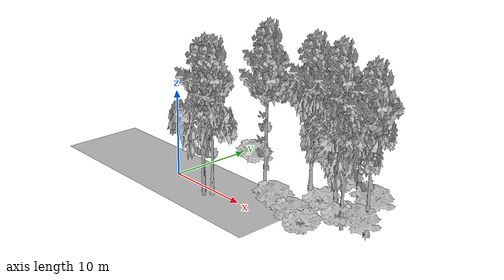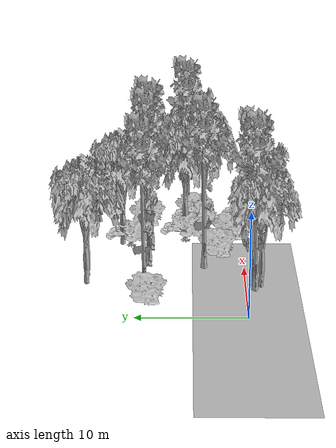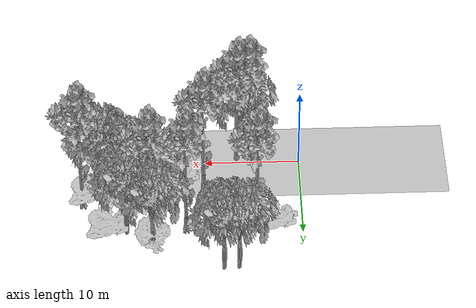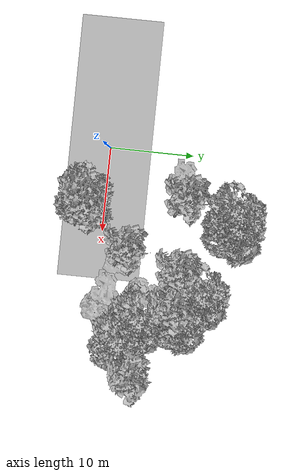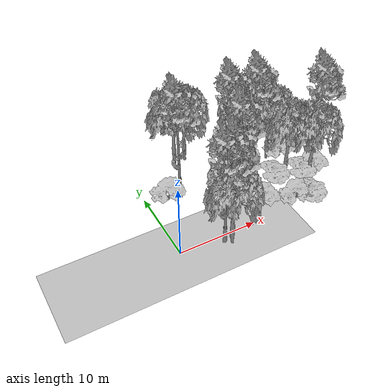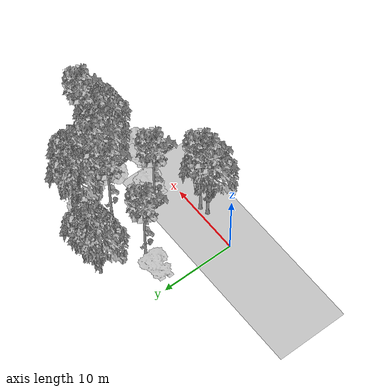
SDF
<sdf version="1.7">
 <world name="default">
  <model name="ground_plane">
   <static>1</static>
   <link name="link">
    <collision name="collision">
     <pose>-50 0 0 0 -0 0</pose>
     <geometry><plane><normal>0 0 1</normal><size>100 100</size></plane></geometry>
     <surface><contact><ode><min_depth>0.01</min_depth><max_vel>0</max_vel></ode></contact></surface>
    </collision>
    <visual name="grass">
     <cast_shadows>0</cast_shadows>
     <geometry>
      <mesh>
       <scale>0.5814285714285714 0.18142857142857144 0.1</scale>
       <uri>file://grass_plane/meshes/grass_plane.dae</uri>
      </mesh>
     </geometry>
    </visual>
   </link>
  </model>
  <model name="Tree 7">
   <static>1</static>
   <pose>20.144166604871202 4.434345135278459 0 1.57079 -0 0</pose>
   <link name="link">
    <collision name="collision">
     <geometry><mesh><scale>4 2.5 4</scale><uri>model://tree_1/meshes/tree_1.obj</uri></mesh></geometry>
    </collision>
    <visual name="visual">
     <geometry><mesh><scale>4 2.5 4</scale><uri>model://tree_1/meshes/tree_1.obj</uri></mesh></geometry>
    </visual>
   </link>
  </model>
  <model name="Tree 8">
   <static>1</static>
   <pose>15.405665071420202 11.719186739586632 0 1.57079 -0 0</pose>
   <link name="link">
    <collision name="collision">
     <geometry><mesh><scale>3.5 5 3.5</scale><uri>model://tree_2/meshes/tree_2.obj</uri></mesh></geometry>
    </collision>
    <visual name="visual">
     <geometry><mesh><scale>3.5 5 3.5</scale><uri>model://tree_2/meshes/tree_2.obj</uri></mesh></geometry>
    </visual>
   </link>
  </model>
  <model name="Tree 16">
   <static>1</static>
   <pose>8.169282240349212 14.693758985796201 0 1.57079 -0 0</pose>
   <link name="link">
    <collision name="collision">
     <geometry><mesh><scale>3.5 5 3.5</scale><uri>model://tree_2/meshes/tree_2.obj</uri></mesh></geometry>
    </collision>
    <visual name="visual">
     <geometry><mesh><scale>3.5 5 3.5</scale><uri>model://tree_2/meshes/tree_2.obj</uri></mesh></geometry>
    </visual>
   </link>
  </model>
  <model name="Tree 19">
   <static>1</static>
   <pose>18.73259302779485 0.4545113756770931 0 1.57079 -0 0</pose>
   <link name="link">
    <collision name="collision">
     <geometry><mesh><scale>4 2.5 4</scale><uri>model://tree_1/meshes/tree_1.obj</uri></mesh></geometry>
    </collision>
    <visual name="visual">
     <geometry><mesh><scale>4 2.5 4</scale><uri>model://tree_1/meshes/tree_1.obj</uri></mesh></geometry>
    </visual>
   </link>
  </model>
  <model name="Tree 46">
   <static>1</static>
   <pose>5.467916880831488 -0.826924710298675 0 1.57079 -0 0</pose>
   <link name="link">
    <collision name="collision">
     <geometry><mesh><scale>3.5 5 3.5</scale><uri>model://tree_9/meshes/tree_9.obj</uri></mesh></geometry>
    </collision>
    <visual name="visual">
     <geometry><mesh><scale>3.5 5 3.5</scale><uri>model://tree_9/meshes/tree_9.obj</uri></mesh></geometry>
    </visual>
   </link>
  </model>
  <model name="Tree 49">
   <static>1</static>
   <pose>4.760917566178875 9.271987386273572 0 1.57079 -0 0</pose>
   <link name="link">
    <collision name="collision">
     <geometry><mesh><scale>3.5 5 3.5</scale><uri>model://tree_9/meshes/tree_9.obj</uri></mesh></geometry>
    </collision>
    <visual name="visual">
     <geometry><mesh><scale>3.5 5 3.5</scale><uri>model://tree_9/meshes/tree_9.obj</uri></mesh></geometry>
    </visual>
   </link>
  </model>
  <model name="Tree 64">
   <static>1</static>
   <pose>15.374349103102375 10.887322662630638 0 1.57079 -0 0</pose>
   <link name="link">
    <collision name="collision">
     <geometry><mesh><scale>4 2.5 4</scale><uri>model://tree_1/meshes/tree_1.obj</uri></mesh></geometry>
    </collision>
    <visual name="visual">
     <geometry><mesh><scale>4 2.5 4</scale><uri>model://tree_1/meshes/tree_1.obj</uri></mesh></geometry>
    </visual>
   </link>
  </model>
  <model name="Tree 82">
   <static>1</static>
   <pose>6.062491196640316 -1.4173188780420922 0 1.57079 -0 0</pose>
   <link name="link">
    <collision name="collision">
     <geometry><mesh><scale>3.5 5 3.5</scale><uri>model://tree_2/meshes/tree_2.obj</uri></mesh></geometry>
    </collision>
    <visual name="visual">
     <geometry><mesh><scale>3.5 5 3.5</scale><uri>model://tree_2/meshes/tree_2.obj</uri></mesh></geometry>
    </visual>
   </link>
  </model>
  <model name="Tree 89">
   <static>1</static>
   <pose>16.83801709977884 0.8156071814617025 0 1.57079 -0 0</pose>
   <link name="link">
    <collision name="collision">
     <geometry><mesh><scale>3 2 3</scale><uri>model://tree_3/meshes/tree_3.obj</uri></mesh></geometry>
    </collision>
    <visual name="visual">
     <geometry><mesh><scale>3 2 3</scale><uri>model://tree_3/meshes/tree_3.obj</uri></mesh></geometry>
    </visual>
   </link>
  </model>
  <model name="Tree 97">
   <static>1</static>
   <pose>12.781970155436383 2.220279122454663 0 1.57079 -0 0</pose>
   <link name="link">
    <collision name="collision">
     <geometry><mesh><scale>3 2 3</scale><uri>model://tree_3/meshes/tree_3.obj</uri></mesh></geometry>
    </collision>
    <visual name="visual">
     <geometry><mesh><scale>3 2 3</scale><uri>model://tree_3/meshes/tree_3.obj</uri></mesh></geometry>
    </visual>
   </link>
  </model>
  <model name="Tree 100">
   <static>1</static>
   <pose>6.5860475335006825 -0.5826930445663141 0 1.57079 -0 0</pose>
   <link name="link">
    <collision name="collision">
     <geometry><mesh><scale>3.5 5 3.5</scale><uri>model://tree_9/meshes/tree_9.obj</uri></mesh></geometry>
    </collision>
    <visual name="visual">
     <geometry><mesh><scale>3.5 5 3.5</scale><uri>model://tree_9/meshes/tree_9.obj</uri></mesh></geometry>
    </visual>
   </link>
  </model>
  <model name="Tree 106">
   <static>1</static>
   <pose>18.44510982765736 5.57438208683044 0 1.57079 -0 0</pose>
   <link name="link">
    <collision name="collision">
     <geometry><mesh><scale>3.5 5 3.5</scale><uri>model://tree_2/meshes/tree_2.obj</uri></mesh></geometry>
    </collision>
    <visual name="visual">
     <geometry><mesh><scale>3.5 5 3.5</scale><uri>model://tree_2/meshes/tree_2.obj</uri></mesh></geometry>
    </visual>
   </link>
  </model>
  <model name="Tree 108">
   <static>1</static>
   <pose>16.611781549309228 5.521199363583122 0 1.57079 -0 0</pose>
   <link name="link">
    <collision name="collision">
     <geometry><mesh><scale>4 2.5 4</scale><uri>model://tree_1/meshes/tree_1.obj</uri></mesh></geometry>
    </collision>
    <visual name="visual">
     <geometry><mesh><scale>4 2.5 4</scale><uri>model://tree_1/meshes/tree_1.obj</uri></mesh></geometry>
    </visual>
   </link>
  </model>
  <model name="Tree 114">
   <static>1</static>
   <pose>22.84655753831875 5.304155586624876 0 1.57079 -0 0</pose>
   <link name="link">
    <collision name="collision">
     <geometry><mesh><scale>3.5 5 3.5</scale><uri>model://tree_9/meshes/tree_9.obj</uri></mesh></geometry>
    </collision>
    <visual name="visual">
     <geometry><mesh><scale>3.5 5 3.5</scale><uri>model://tree_9/meshes/tree_9.obj</uri></mesh></geometry>
    </visual>
   </link>
  </model>
  <model name="Tree 123">
   <static>1</static>
   <pose>15.756356787935147 8.91229694395879 0 1.57079 -0 0</pose>
   <link name="link">
    <collision name="collision">
     <geometry><mesh><scale>3.5 5 3.5</scale><uri>model://tree_9/meshes/tree_9.obj</uri></mesh></geometry>
    </collision>
    <visual name="visual">
     <geometry><mesh><scale>3.5 5 3.5</scale><uri>model://tree_9/meshes/tree_9.obj</uri></mesh></geometry>
    </visual>
   </link>
  </model>
  <model name="Tree 129">
   <static>1</static>
   <pose>12.033885606092369 9.071357249817833 0 1.57079 -0 0</pose>
   <link name="link">
    <collision name="collision">
     <geometry><mesh><scale>3.5 5 3.5</scale><uri>model://tree_9/meshes/tree_9.obj</uri></mesh></geometry>
    </collision>
    <visual name="visual">
     <geometry><mesh><scale>3.5 5 3.5</scale><uri>model://tree_9/meshes/tree_9.obj</uri></mesh></geometry>
    </visual>
   </link>
  </model>
  <model name="Tree 130">
   <static>1</static>
   <pose>10.175905984611305 3.786720934240961 0 1.57079 -0 0</pose>
   <link name="link">
    <collision name="collision">
     <geometry><mesh><scale>3.5 5 3.5</scale><uri>model://tree_9/meshes/tree_9.obj</uri></mesh></geometry>
    </collision>
    <visual name="visual">
     <geometry><mesh><scale>3.5 5 3.5</scale><uri>model://tree_9/meshes/tree_9.obj</uri></mesh></geometry>
    </visual>
   </link>
  </model>
  <model name="Tree 132">
   <static>1</static>
   <pose>20.173278424347373 9.266578318132439 0 1.57079 -0 0</pose>
   <link name="link">
    <collision name="collision">
     <geometry><mesh><scale>3 2 3</scale><uri>model://tree_3/meshes/tree_3.obj</uri></mesh></geometry>
    </collision>
    <visual name="visual">
     <geometry><mesh><scale>3 2 3</scale><uri>model://tree_3/meshes/tree_3.obj</uri></mesh></geometry>
    </visual>
   </link>
  </model>
  <model name="Tree 138">
   <static>1</static>
   <pose>20.92221252733357 3.6811086690556856 0 1.57079 -0 0</pose>
   <link name="link">
    <collision name="collision">
     <geometry><mesh><scale>3.5 5 3.5</scale><uri>model://tree_2/meshes/tree_2.obj</uri></mesh></geometry>
    </collision>
    <visual name="visual">
     <geometry><mesh><scale>3.5 5 3.5</scale><uri>model://tree_2/meshes/tree_2.obj</uri></mesh></geometry>
    </visual>
   </link>
  </model>
  <model name="Tree 148">
   <static>1</static>
   <pose>22.07408114228322 4.54247587310952 0 1.57079 -0 0</pose>
   <link name="link">
    <collision name="collision">
     <geometry><mesh><scale>3 2 3</scale><uri>model://tree_3/meshes/tree_3.obj</uri></mesh></geometry>
    </collision>
    <visual name="visual">
     <geometry><mesh><scale>3 2 3</scale><uri>model://tree_3/meshes/tree_3.obj</uri></mesh></geometry>
    </visual>
   </link>
  </model>
  <model name="Tree 167">
   <static>1</static>
   <pose>18.11609646687576 9.626896716298113 0 1.57079 -0 0</pose>
   <link name="link">
    <collision name="collision">
     <geometry><mesh><scale>3.5 5 3.5</scale><uri>model://tree_2/meshes/tree_2.obj</uri></mesh></geometry>
    </collision>
    <visual name="visual">
     <geometry><mesh><scale>3.5 5 3.5</scale><uri>model://tree_2/meshes/tree_2.obj</uri></mesh></geometry>
    </visual>
   </link>
  </model>
  <model name="Tree 176">
   <static>1</static>
   <pose>2.9027879762254685 8.829419600511471 0 1.57079 -0 0</pose>
   <link name="link">
    <collision name="collision">
     <geometry><mesh><scale>3 2 3</scale><uri>model://tree_3/meshes/tree_3.obj</uri></mesh></geometry>
    </collision>
    <visual name="visual">
     <geometry><mesh><scale>3 2 3</scale><uri>model://tree_3/meshes/tree_3.obj</uri></mesh></geometry>
    </visual>
   </link>
  </model>
  <model name="Tree 179">
   <static>1</static>
   <pose>6.622896307919184 14.631094041954047 0 1.57079 -0 0</pose>
   <link name="link">
    <collision name="collision">
     <geometry><mesh><scale>3.5 5 3.5</scale><uri>model://tree_2/meshes/tree_2.obj</uri></mesh></geometry>
    </collision>
    <visual name="visual">
     <geometry><mesh><scale>3.5 5 3.5</scale><uri>model://tree_2/meshes/tree_2.obj</uri></mesh></geometry>
    </visual>
   </link>
  </model>
 </world>
</sdf>
